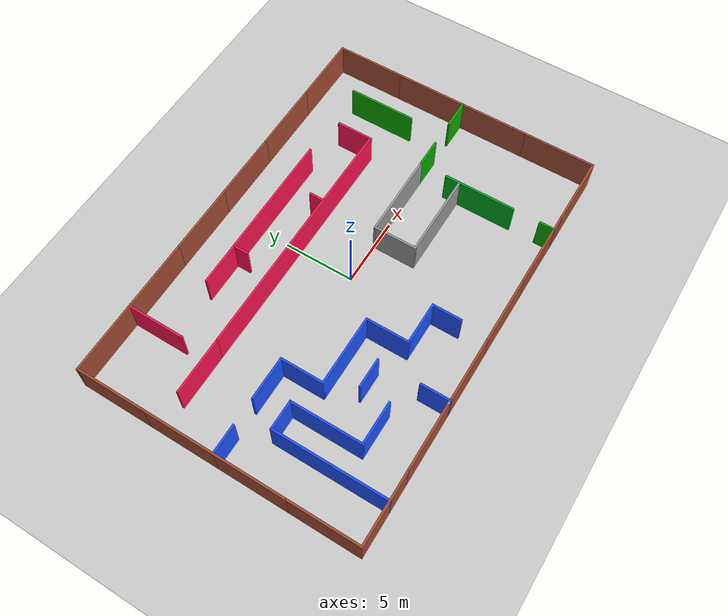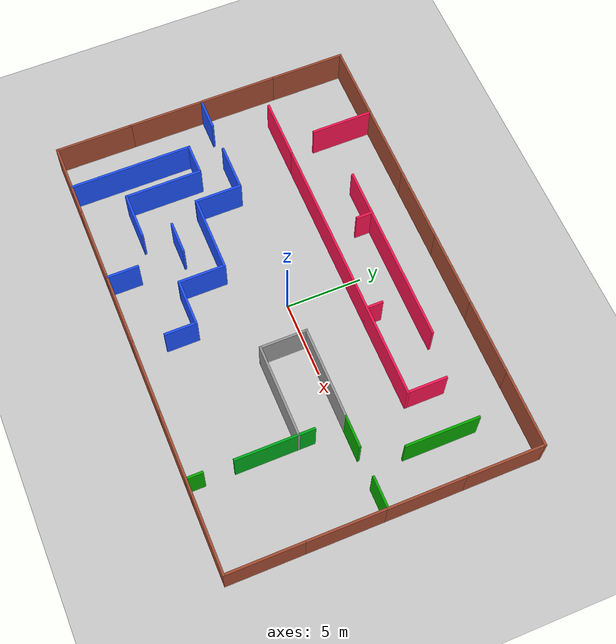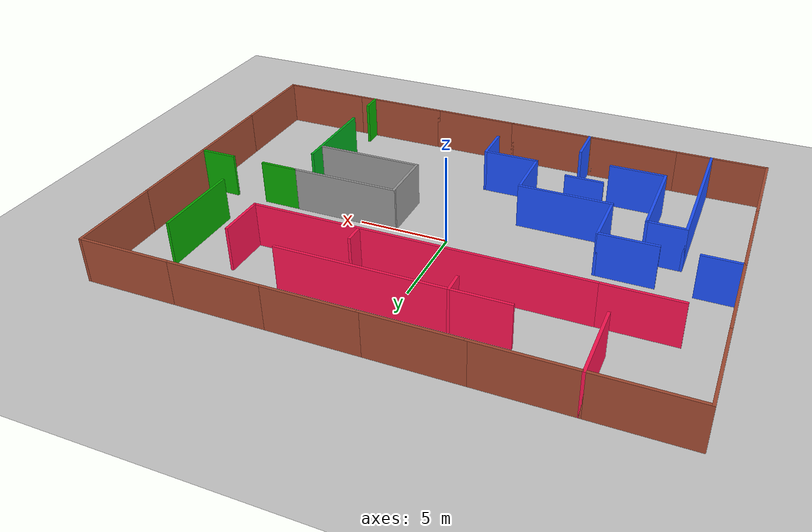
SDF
<sdf version="1.7">
 <world name="default">
  <model name="ground_plane">
   <static>1</static>
   <link name="link">
    <collision name="collision">
     <geometry><plane><normal>0 0 1</normal><size>100 100</size></plane></geometry>
     <surface>
      <contact><collide_bitmask>65535</collide_bitmask></contact>
      <friction><ode><mu>100</mu><mu2>50</mu2></ode></friction>
     </surface>
    </collision>
    <visual name="visual">
     <cast_shadows>0</cast_shadows>
     <geometry><plane><normal>0 0 1</normal><size>100 100</size></plane></geometry>
     <material>
      <script><uri>file://media/materials/scripts/gazebo.material</uri><name>Gazebo/Grey</name></script>
     </material>
    </visual>
   </link>
  </model>
  <model name="Building">
   <link name="Wall_10">
    <collision name="Wall_10_Collision">
     <geometry><box><size>5.15 0.15 2.5</size></box></geometry>
     <pose>0 0 1.25 0 -0 0</pose>
    </collision>
    <visual name="Wall_10_Visual">
     <pose>0 0 1.25 0 -0 0</pose>
     <geometry><box><size>5.15 0.15 2.5</size></box></geometry>
     <material>
      <script><uri>file://media/materials/scripts/gazebo.material</uri><name>Gazebo/Bricks</name></script>
      <ambient>1 1 1 1</ambient>
     </material>
     <meta><layer>0</layer></meta>
    </visual>
    <pose>-12.5 -10 0 0 -0 0</pose>
   </link>
   <link name="Wall_13">
    <collision name="Wall_13_Collision">
     <geometry><box><size>4.97634 0.15 2.5</size></box></geometry>
     <pose>0 0 1.25 0 -0 0</pose>
    </collision>
    <visual name="Wall_13_Visual">
     <pose>0 0 1.25 0 -0 0</pose>
     <geometry><box><size>4.97634 0.15 2.5</size></box></geometry>
     <material>
      <script><uri>file://media/materials/scripts/gazebo.material</uri><name>Gazebo/Bricks</name></script>
      <ambient>1 1 1 1</ambient>
     </material>
     <meta><layer>0</layer></meta>
    </visual>
    <pose>-7.58683 -10 0 0 -0 0</pose>
   </link>
   <link name="Wall_14">
    <collision name="Wall_14_Collision">
     <geometry><box><size>0.207321 0.15 2.5</size></box></geometry>
     <pose>0 0 1.25 0 -0 0</pose>
    </collision>
    <visual name="Wall_14_Visual">
     <pose>0 0 1.25 0 -0 0</pose>
     <geometry><box><size>0.207321 0.15 2.5</size></box></geometry>
     <material>
      <script><uri>file://media/materials/scripts/gazebo.material</uri><name>Gazebo/Grey</name></script>
      <ambient>1 1 1 1</ambient>
     </material>
     <meta><layer>0</layer></meta>
    </visual>
    <pose>-5.16866 -10 0 0 -0 0</pose>
   </link>
   <link name="Wall_15">
    <collision name="Wall_15_Collision">
     <geometry><box><size>5 0.15 2.5</size></box></geometry>
     <pose>0 0 1.25 0 -0 0</pose>
    </collision>
    <visual name="Wall_15_Visual">
     <pose>0 0 1.25 0 -0 0</pose>
     <geometry><box><size>5 0.15 2.5</size></box></geometry>
     <material>
      <script><uri>file://media/materials/scripts/gazebo.material</uri><name>Gazebo/Bricks</name></script>
      <ambient>1 1 1 1</ambient>
     </material>
     <meta><layer>0</layer></meta>
    </visual>
    <pose>-2.715 -10 0 0 -0 0</pose>
   </link>
   <link name="Wall_16">
    <collision name="Wall_16_Collision">
     <geometry><box><size>5 0.15 2.5</size></box></geometry>
     <pose>0 0 1.25 0 -0 0</pose>
    </collision>
    <visual name="Wall_16_Visual">
     <pose>0 0 1.25 0 -0 0</pose>
     <geometry><box><size>5 0.15 2.5</size></box></geometry>
     <material>
      <script><uri>file://media/materials/scripts/gazebo.material</uri><name>Gazebo/Bricks</name></script>
      <ambient>1 1 1 1</ambient>
     </material>
     <meta><layer>0</layer></meta>
    </visual>
    <pose>2.135 -10 0 0 -0 0</pose>
   </link>
   <link name="Wall_17">
    <collision name="Wall_17_Collision">
     <geometry><box><size>5.59 0.15 2.5</size></box></geometry>
     <pose>0 0 1.25 0 -0 0</pose>
    </collision>
    <visual name="Wall_17_Visual">
     <pose>0 0 1.25 0 -0 0</pose>
     <geometry><box><size>5.59 0.15 2.5</size></box></geometry>
     <material>
      <script><uri>file://media/materials/scripts/gazebo.material</uri><name>Gazebo/Bricks</name></script>
      <ambient>1 1 1 1</ambient>
     </material>
     <meta><layer>0</layer></meta>
    </visual>
    <pose>7.28 -10 0 0 -0 0</pose>
   </link>
   <link name="Wall_18">
    <collision name="Wall_18_Collision">
     <geometry><box><size>5.15 0.15 2.5</size></box></geometry>
     <pose>0 0 1.25 0 -0 0</pose>
    </collision>
    <visual name="Wall_18_Visual">
     <pose>0 0 1.25 0 -0 0</pose>
     <geometry><box><size>5.15 0.15 2.5</size></box></geometry>
     <material>
      <script><uri>file://media/materials/scripts/gazebo.material</uri><name>Gazebo/Bricks</name></script>
      <ambient>1 1 1 1</ambient>
     </material>
     <meta><layer>0</layer></meta>
    </visual>
    <pose>12.5 -10 0 0 -0 0</pose>
   </link>
   <link name="Wall_21">
    <collision name="Wall_21_Collision">
     <geometry><box><size>5.15 0.15 2.5</size></box></geometry>
     <pose>0 0 1.25 0 -0 0</pose>
    </collision>
    <visual name="Wall_21_Visual">
     <pose>0 0 1.25 0 -0 0</pose>
     <geometry><box><size>5.15 0.15 2.5</size></box></geometry>
     <material>
      <script><uri>file://media/materials/scripts/gazebo.material</uri><name>Gazebo/Bricks</name></script>
      <ambient>1 1 1 1</ambient>
     </material>
     <meta><layer>0</layer></meta>
    </visual>
    <pose>15 -7.5 0 0 -0 1.5708</pose>
   </link>
   <link name="Wall_22">
    <collision name="Wall_22_Collision">
     <geometry><box><size>5.15 0.15 2.5</size></box></geometry>
     <pose>0 0 1.25 0 -0 0</pose>
    </collision>
    <visual name="Wall_22_Visual">
     <pose>0 0 1.25 0 -0 0</pose>
     <geometry><box><size>5.15 0.15 2.5</size></box></geometry>
     <material>
      <script><uri>file://media/materials/scripts/gazebo.material</uri><name>Gazebo/Bricks</name></script>
      <ambient>1 1 1 1</ambient>
     </material>
     <meta><layer>0</layer></meta>
    </visual>
    <pose>15 -2.5 0 0 -0 1.5708</pose>
   </link>
   <link name="Wall_23">
    <collision name="Wall_23_Collision">
     <geometry><box><size>5.15 0.15 2.5</size></box></geometry>
     <pose>0 0 1.25 0 -0 0</pose>
    </collision>
    <visual name="Wall_23_Visual">
     <pose>0 0 1.25 0 -0 0</pose>
     <geometry><box><size>5.15 0.15 2.5</size></box></geometry>
     <material>
      <script><uri>file://media/materials/scripts/gazebo.material</uri><name>Gazebo/Bricks</name></script>
      <ambient>1 1 1 1</ambient>
     </material>
     <meta><layer>0</layer></meta>
    </visual>
    <pose>15 2.5 0 0 -0 1.5708</pose>
   </link>
   <link name="Wall_24">
    <collision name="Wall_24_Collision">
     <geometry><box><size>5.15 0.15 2.5</size></box></geometry>
     <pose>0 0 1.25 0 -0 0</pose>
    </collision>
    <visual name="Wall_24_Visual">
     <pose>0 0 1.25 0 -0 0</pose>
     <geometry><box><size>5.15 0.15 2.5</size></box></geometry>
     <material>
      <script><uri>file://media/materials/scripts/gazebo.material</uri><name>Gazebo/Bricks</name></script>
      <ambient>1 1 1 1</ambient>
     </material>
     <meta><layer>0</layer></meta>
    </visual>
    <pose>15 7.5 0 0 -0 1.5708</pose>
   </link>
   <link name="Wall_25">
    <collision name="Wall_25_Collision">
     <geometry><box><size>5.15 0.15 2.5</size></box></geometry>
     <pose>0 0 1.25 0 -0 0</pose>
    </collision>
    <visual name="Wall_25_Visual">
     <pose>0 0 1.25 0 -0 0</pose>
     <geometry><box><size>5.15 0.15 2.5</size></box></geometry>
     <material>
      <script><uri>file://media/materials/scripts/gazebo.material</uri><name>Gazebo/Bricks</name></script>
      <ambient>1 1 1 1</ambient>
     </material>
     <meta><layer>0</layer></meta>
    </visual>
    <pose>12.5 10 0 0 -0 3.14159</pose>
   </link>
   <link name="Wall_26">
    <collision name="Wall_26_Collision">
     <geometry><box><size>5.15 0.15 2.5</size></box></geometry>
     <pose>0 0 1.25 0 -0 0</pose>
    </collision>
    <visual name="Wall_26_Visual">
     <pose>0 0 1.25 0 -0 0</pose>
     <geometry><box><size>5.15 0.15 2.5</size></box></geometry>
     <material>
      <script><uri>file://media/materials/scripts/gazebo.material</uri><name>Gazebo/Bricks</name></script>
      <ambient>1 1 1 1</ambient>
     </material>
     <meta><layer>0</layer></meta>
    </visual>
    <pose>7.5 10 0 0 -0 3.14159</pose>
   </link>
   <link name="Wall_28">
    <collision name="Wall_28_Collision">
     <geometry><box><size>5.15 0.15 2.5</size></box></geometry>
     <pose>0 0 1.25 0 -0 0</pose>
    </collision>
    <visual name="Wall_28_Visual">
     <pose>0 0 1.25 0 -0 0</pose>
     <geometry><box><size>5.15 0.15 2.5</size></box></geometry>
     <material>
      <script><uri>file://media/materials/scripts/gazebo.material</uri><name>Gazebo/Bricks</name></script>
      <ambient>1 1 1 1</ambient>
     </material>
     <meta><layer>0</layer></meta>
    </visual>
    <pose>2.5 10 0 0 -0 3.14159</pose>
   </link>
   <link name="Wall_29">
    <collision name="Wall_29_Collision">
     <geometry><box><size>5.15 0.15 2.5</size></box></geometry>
     <pose>0 0 1.25 0 -0 0</pose>
    </collision>
    <visual name="Wall_29_Visual">
     <pose>0 0 1.25 0 -0 0</pose>
     <geometry><box><size>5.15 0.15 2.5</size></box></geometry>
     <material>
      <script><uri>file://media/materials/scripts/gazebo.material</uri><name>Gazebo/Bricks</name></script>
      <ambient>1 1 1 1</ambient>
     </material>
     <meta><layer>0</layer></meta>
    </visual>
    <pose>-2.5 10 0 0 -0 3.14159</pose>
   </link>
   <link name="Wall_31">
    <collision name="Wall_31_Collision">
     <geometry><box><size>5.15 0.15 2.5</size></box></geometry>
     <pose>0 0 1.25 0 -0 0</pose>
    </collision>
    <visual name="Wall_31_Visual">
     <pose>0 0 1.25 0 -0 0</pose>
     <geometry><box><size>5.15 0.15 2.5</size></box></geometry>
     <material>
      <script><uri>file://media/materials/scripts/gazebo.material</uri><name>Gazebo/Bricks</name></script>
      <ambient>1 1 1 1</ambient>
     </material>
     <meta><layer>0</layer></meta>
    </visual>
    <pose>-12.5 10 0 0 -0 3.14159</pose>
   </link>
   <link name="Wall_32">
    <collision name="Wall_32_Collision">
     <geometry><box><size>5.15 0.15 2.5</size></box></geometry>
     <pose>0 0 1.25 0 -0 0</pose>
    </collision>
    <visual name="Wall_32_Visual">
     <pose>0 0 1.25 0 -0 0</pose>
     <geometry><box><size>5.15 0.15 2.5</size></box></geometry>
     <material>
      <script><uri>file://media/materials/scripts/gazebo.material</uri><name>Gazebo/Bricks</name></script>
      <ambient>1 1 1 1</ambient>
     </material>
     <meta><layer>0</layer></meta>
    </visual>
    <pose>-15 7.5 0 0 -0 -1.5708</pose>
   </link>
   <link name="Wall_33">
    <collision name="Wall_33_Collision">
     <geometry><box><size>5.15 0.15 2.5</size></box></geometry>
     <pose>0 0 1.25 0 -0 0</pose>
    </collision>
    <visual name="Wall_33_Visual">
     <pose>0 0 1.25 0 -0 0</pose>
     <geometry><box><size>5.15 0.15 2.5</size></box></geometry>
     <material>
      <script><uri>file://media/materials/scripts/gazebo.material</uri><name>Gazebo/Bricks</name></script>
      <ambient>1 1 1 1</ambient>
     </material>
     <meta><layer>0</layer></meta>
    </visual>
    <pose>-15 2.5 0 0 -0 -1.5708</pose>
   </link>
   <link name="Wall_34">
    <collision name="Wall_34_Collision">
     <geometry><box><size>5.15 0.15 2.5</size></box></geometry>
     <pose>0 0 1.25 0 -0 0</pose>
    </collision>
    <visual name="Wall_34_Visual">
     <pose>0 0 1.25 0 -0 0</pose>
     <geometry><box><size>5.15 0.15 2.5</size></box></geometry>
     <material>
      <script><uri>file://media/materials/scripts/gazebo.material</uri><name>Gazebo/Bricks</name></script>
      <ambient>1 1 1 1</ambient>
     </material>
     <meta><layer>0</layer></meta>
    </visual>
    <pose>-15 -2.5 0 0 -0 -1.5708</pose>
   </link>
   <link name="Wall_35">
    <collision name="Wall_35_Collision">
     <geometry><box><size>5.15 0.15 2.5</size></box></geometry>
     <pose>0 0 1.25 0 -0 0</pose>
    </collision>
    <visual name="Wall_35_Visual">
     <pose>0 0 1.25 0 -0 0</pose>
     <geometry><box><size>5.15 0.15 2.5</size></box></geometry>
     <material>
      <script><uri>file://media/materials/scripts/gazebo.material</uri><name>Gazebo/Bricks</name></script>
      <ambient>1 1 1 1</ambient>
     </material>
     <meta><layer>0</layer></meta>
    </visual>
    <pose>-15 -7.5 0 0 -0 -1.5708</pose>
   </link>
   <link name="Wall_37">
    <collision name="Wall_37_Collision">
     <geometry><box><size>5.15 0.15 2.5</size></box></geometry>
     <pose>0 0 1.25 0 -0 0</pose>
    </collision>
    <visual name="Wall_37_Visual">
     <pose>0 0 1.25 0 -0 0</pose>
     <geometry><box><size>5.15 0.15 2.5</size></box></geometry>
     <material>
      <script><uri>file://media/materials/scripts/gazebo.material</uri><name>Gazebo/Bricks</name></script>
      <ambient>1 1 1 1</ambient>
     </material>
     <meta><layer>0</layer></meta>
    </visual>
    <pose>-7.5 10 0 0 -0 0</pose>
   </link>
   <link name="Wall_39">
    <collision name="Wall_39_Collision">
     <geometry><box><size>8.15 0.15 2.5</size></box></geometry>
     <pose>0 0 1.25 0 -0 0</pose>
    </collision>
    <visual name="Wall_39_Visual">
     <pose>0 0 1.25 0 -0 0</pose>
     <geometry><box><size>8.15 0.15 2.5</size></box></geometry>
     <material>
      <script><uri>file://media/materials/scripts/gazebo.material</uri><name>Gazebo/Grey</name></script>
      <ambient>0.113725 0.321569 1 1</ambient>
     </material>
     <meta><layer>0</layer></meta>
    </visual>
    <pose>-12 -6 0 0 -0 1.5708</pose>
   </link>
   <link name="Wall_41">
    <collision name="Wall_41_Collision">
     <geometry><box><size>2.15 0.15 2.5</size></box></geometry>
     <pose>0 0 1.25 0 -0 0</pose>
    </collision>
    <visual name="Wall_41_Visual">
     <pose>0 0 1.25 0 -0 0</pose>
     <geometry><box><size>2.15 0.15 2.5</size></box></geometry>
     <material>
      <script><uri>file://media/materials/scripts/gazebo.material</uri><name>Gazebo/Grey</name></script>
      <ambient>0.113725 0.321569 1 1</ambient>
     </material>
     <meta><layer>0</layer></meta>
    </visual>
    <pose>-14 0 0 0 -0 0</pose>
   </link>
   <link name="Wall_43">
    <collision name="Wall_43_Collision">
     <geometry><box><size>5.15 0.15 2.5</size></box></geometry>
     <pose>0 0 1.25 0 -0 0</pose>
    </collision>
    <visual name="Wall_43_Visual">
     <pose>0 0 1.25 0 -0 0</pose>
     <geometry><box><size>5.15 0.15 2.5</size></box></geometry>
     <material>
      <script><uri>file://media/materials/scripts/gazebo.material</uri><name>Gazebo/Grey</name></script>
      <ambient>0.113725 0.321569 1 1</ambient>
     </material>
     <meta><layer>0</layer></meta>
    </visual>
    <pose>-5.5 -3 0 0 -0 0</pose>
   </link>
   <link name="Wall_44">
    <collision name="Wall_44_Collision">
     <geometry><box><size>3.15 0.15 2.5</size></box></geometry>
     <pose>0 0 1.25 0 -0 0</pose>
    </collision>
    <visual name="Wall_44_Visual">
     <pose>0 0 1.25 0 -0 0</pose>
     <geometry><box><size>3.15 0.15 2.5</size></box></geometry>
     <material>
      <script><uri>file://media/materials/scripts/gazebo.material</uri><name>Gazebo/Grey</name></script>
      <ambient>0.113725 0.321569 1 1</ambient>
     </material>
     <meta><layer>0</layer></meta>
    </visual>
    <pose>-3 -4.5 0 0 -0 -1.5708</pose>
   </link>
   <link name="Wall_45">
    <collision name="Wall_45_Collision">
     <geometry><box><size>3.15 0.15 2.5</size></box></geometry>
     <pose>0 0 1.25 0 -0 0</pose>
    </collision>
    <visual name="Wall_45_Visual">
     <pose>0 0 1.25 0 -0 0</pose>
     <geometry><box><size>3.15 0.15 2.5</size></box></geometry>
     <material>
      <script><uri>file://media/materials/scripts/gazebo.material</uri><name>Gazebo/Grey</name></script>
      <ambient>0.113725 0.321569 1 1</ambient>
     </material>
     <meta><layer>0</layer></meta>
    </visual>
    <pose>-1.5 -6 0 0 -0 0</pose>
   </link>
   <link name="Wall_46">
    <collision name="Wall_46_Collision">
     <geometry><box><size>2.15 0.15 2.5</size></box></geometry>
     <pose>0 0 1.25 0 -0 0</pose>
    </collision>
    <visual name="Wall_46_Visual">
     <pose>0 0 1.25 0 -0 0</pose>
     <geometry><box><size>2.15 0.15 2.5</size></box></geometry>
     <material>
      <script><uri>file://media/materials/scripts/gazebo.material</uri><name>Gazebo/Grey</name></script>
      <ambient>0.113725 0.321569 1 1</ambient>
     </material>
     <meta><layer>0</layer></meta>
    </visual>
    <pose>0 -7 0 0 -0 -1.5708</pose>
   </link>
   <link name="Wall_48">
    <collision name="Wall_48_Collision">
     <geometry><box><size>2.15 0.15 2.5</size></box></geometry>
     <pose>0 0 1.25 0 -0 0</pose>
    </collision>
    <visual name="Wall_48_Visual">
     <pose>0 0 1.25 0 -0 0</pose>
     <geometry><box><size>2.15 0.15 2.5</size></box></geometry>
     <material>
      <script><uri>file://media/materials/scripts/gazebo.material</uri><name>Gazebo/Grey</name></script>
      <ambient>0.113725 0.321569 1 1</ambient>
     </material>
     <meta><layer>0</layer></meta>
    </visual>
    <pose>-11 -2 0 0 -0 0</pose>
   </link>
   <link name="Wall_49">
    <collision name="Wall_49_Collision">
     <geometry><box><size>5.15 0.15 2.5</size></box></geometry>
     <pose>0 0 1.25 0 -0 0</pose>
    </collision>
    <visual name="Wall_49_Visual">
     <pose>0 0 1.25 0 -0 0</pose>
     <geometry><box><size>5.15 0.15 2.5</size></box></geometry>
     <material>
      <script><uri>file://media/materials/scripts/gazebo.material</uri><name>Gazebo/Grey</name></script>
      <ambient>0.113725 0.321569 1 1</ambient>
     </material>
     <meta><layer>0</layer></meta>
    </visual>
    <pose>-10 -4.5 0 0 -0 -1.5708</pose>
   </link>
   <link name="Wall_50">
    <collision name="Wall_50_Collision">
     <geometry><box><size>3.15 0.15 2.5</size></box></geometry>
     <pose>0 0 1.25 0 -0 0</pose>
    </collision>
    <visual name="Wall_50_Visual">
     <pose>0 0 1.25 0 -0 0</pose>
     <geometry><box><size>3.15 0.15 2.5</size></box></geometry>
     <material>
      <script><uri>file://media/materials/scripts/gazebo.material</uri><name>Gazebo/Grey</name></script>
      <ambient>0.113725 0.321569 1 1</ambient>
     </material>
     <meta><layer>0</layer></meta>
    </visual>
    <pose>-8.5 -7 0 0 -0 0</pose>
   </link>
   <link name="Wall_52">
    <collision name="Wall_52_Collision">
     <geometry><box><size>2.15 0.15 2.5</size></box></geometry>
     <pose>0 0 1.25 0 -0 0</pose>
    </collision>
    <visual name="Wall_52_Visual">
     <pose>0 0 1.25 0 -0 0</pose>
     <geometry><box><size>2.15 0.15 2.5</size></box></geometry>
     <material>
      <script><uri>file://media/materials/scripts/gazebo.material</uri><name>Gazebo/Grey</name></script>
      <ambient>0.113725 0.321569 1 1</ambient>
     </material>
     <meta><layer>0</layer></meta>
    </visual>
    <pose>-6 -5 0 0 -0 0</pose>
   </link>
   <link name="Wall_54">
    <collision name="Wall_54_Collision">
     <geometry><box><size>2.15 0.15 2.5</size></box></geometry>
     <pose>0 0 1.25 0 -0 0</pose>
    </collision>
    <visual name="Wall_54_Visual">
     <pose>0 0 1.25 0 -0 0</pose>
     <geometry><box><size>2.15 0.15 2.5</size></box></geometry>
     <material>
      <script><uri>file://media/materials/scripts/gazebo.material</uri><name>Gazebo/Grey</name></script>
      <ambient>0.113725 0.321569 1 1</ambient>
     </material>
     <meta><layer>0</layer></meta>
    </visual>
    <pose>-5 -9 0 0 -0 -1.5708</pose>
   </link>
   <link name="Wall_56">
    <collision name="Wall_56_Collision">
     <geometry><box><size>3.15 0.15 2.5</size></box></geometry>
     <pose>0 0 1.25 0 -0 0</pose>
    </collision>
    <visual name="Wall_56_Visual">
     <pose>0 0 1.25 0 -0 0</pose>
     <geometry><box><size>3.15 0.15 2.5</size></box></geometry>
     <material>
      <script><uri>file://media/materials/scripts/gazebo.material</uri><name>Gazebo/Grey</name></script>
      <ambient>0.113725 0.321569 1 1</ambient>
     </material>
     <meta><layer>0</layer></meta>
    </visual>
    <pose>-9.5 0 0 0 -0 0</pose>
   </link>
   <link name="Wall_57">
    <collision name="Wall_57_Collision">
     <geometry><box><size>3.15 0.15 2.5</size></box></geometry>
     <pose>0 0 1.25 0 -0 0</pose>
    </collision>
    <visual name="Wall_57_Visual">
     <pose>0 0 1.25 0 -0 0</pose>
     <geometry><box><size>3.15 0.15 2.5</size></box></geometry>
     <material>
      <script><uri>file://media/materials/scripts/gazebo.material</uri><name>Gazebo/Grey</name></script>
      <ambient>0.113725 0.321569 1 1</ambient>
     </material>
     <meta><layer>0</layer></meta>
    </visual>
    <pose>-8 -1.5 0 0 -0 -1.5708</pose>
   </link>
   <link name="Wall_59">
    <collision name="Wall_59_Collision">
     <geometry><box><size>1.15 0.15 2.5</size></box></geometry>
     <pose>0 0 1.25 0 -0 0</pose>
    </collision>
    <visual name="Wall_59_Visual">
     <pose>0 0 1.25 0 -0 0</pose>
     <geometry><box><size>1.15 0.15 2.5</size></box></geometry>
     <material>
      <script><uri>file://media/materials/scripts/gazebo.material</uri><name>Gazebo/Grey</name></script>
      <ambient>0.0313726 0.666667 0 1</ambient>
     </material>
     <meta><layer>0</layer></meta>
    </visual>
    <pose>9 -9.5 0 0 -0 1.5708</pose>
   </link>
   <link name="Wall_62">
    <collision name="Wall_62_Collision">
     <geometry><box><size>5.15 0.15 2.5</size></box></geometry>
     <pose>0 0 1.25 0 -0 0</pose>
    </collision>
    <visual name="Wall_62_Visual">
     <pose>0 0 1.25 0 -0 0</pose>
     <geometry><box><size>5.15 0.15 2.5</size></box></geometry>
     <material>
      <script><uri>file://media/materials/scripts/gazebo.material</uri><name>Gazebo/Grey</name></script>
      <ambient>0 0.666667 0.109804 1</ambient>
     </material>
     <meta><layer>0</layer></meta>
    </visual>
    <pose>9 -4.5 0 0 -0 1.5708</pose>
   </link>
   <link name="Wall_63">
    <collision name="Wall_63_Collision">
     <geometry><box><size>2.15 0.15 2.5</size></box></geometry>
     <pose>0 0 1.25 0 -0 0</pose>
    </collision>
    <visual name="Wall_63_Visual">
     <pose>0 0 1.25 0 -0 0</pose>
     <geometry><box><size>2.15 0.15 2.5</size></box></geometry>
     <material>
      <script><uri>file://media/materials/scripts/gazebo.material</uri><name>Gazebo/Grey</name></script>
      <ambient>0.0313726 0.666667 0 1</ambient>
     </material>
     <meta><layer>0</layer></meta>
    </visual>
    <pose>10 0 0 0 -0 0</pose>
   </link>
   <link name="Wall_65">
    <collision name="Wall_65_Collision">
     <geometry><box><size>2.15 0.15 2.5</size></box></geometry>
     <pose>0 0 1.25 0 -0 0</pose>
    </collision>
    <visual name="Wall_65_Visual">
     <pose>0 0 1.25 0 -0 0</pose>
     <geometry><box><size>2.15 0.15 2.5</size></box></geometry>
     <material>
      <script><uri>file://media/materials/scripts/gazebo.material</uri><name>Gazebo/Grey</name></script>
      <ambient>0.0313726 0.666667 0 1</ambient>
     </material>
     <meta><layer>0</layer></meta>
    </visual>
    <pose>14 0 0 0 -0 0</pose>
   </link>
   <link name="Wall_68">
    <collision name="Wall_68_Collision">
     <geometry><box><size>4.15 0.15 2.5</size></box></geometry>
     <pose>0 0 1.25 0 -0 0</pose>
    </collision>
    <visual name="Wall_68_Visual">
     <pose>0 0 1.25 0 -0 0</pose>
     <geometry><box><size>4.15 0.15 2.5</size></box></geometry>
     <material>
      <script><uri>file://media/materials/scripts/gazebo.material</uri><name>Gazebo/Grey</name></script>
      <ambient>1 0.0745098 0.321569 1</ambient>
     </material>
     <meta><layer>0</layer></meta>
    </visual>
    <pose>-10 8 0 0 -0 1.5708</pose>
   </link>
   <link name="Wall_70">
    <collision name="Wall_70_Collision">
     <geometry><box><size>4.15 0.15 2.5</size></box></geometry>
     <pose>0 0 1.25 0 -0 0</pose>
    </collision>
    <visual name="Wall_70_Visual">
     <pose>0 0 1.25 0 -0 0</pose>
     <geometry><box><size>4.15 0.15 2.5</size></box></geometry>
     <material>
      <script><uri>file://media/materials/scripts/gazebo.material</uri><name>Gazebo/Grey</name></script>
      <ambient>1 0.0745098 0.321569 1</ambient>
     </material>
     <meta><layer>0</layer></meta>
    </visual>
    <pose>-11 4 0 0 -0 0</pose>
   </link>
   <link name="Wall_72">
    <collision name="Wall_72_Collision">
     <geometry><box><size>12.15 0.15 2.5</size></box></geometry>
     <pose>0 0 1.25 0 -0 0</pose>
    </collision>
    <visual name="Wall_72_Visual">
     <pose>0 0 1.25 0 -0 0</pose>
     <geometry><box><size>12.15 0.15 2.5</size></box></geometry>
     <material>
      <script><uri>file://media/materials/scripts/gazebo.material</uri><name>Gazebo/Grey</name></script>
      <ambient>1 0.0745098 0.321569 1</ambient>
     </material>
     <meta><layer>0</layer></meta>
    </visual>
    <pose>0 7 0 0 -0 0</pose>
   </link>
   <link name="Wall_75">
    <collision name="Wall_75_Collision">
     <geometry><box><size>18.15 0.15 2.5</size></box></geometry>
     <pose>0 0 1.25 0 -0 0</pose>
    </collision>
    <visual name="Wall_75_Visual">
     <pose>0 0 1.25 0 -0 0</pose>
     <geometry><box><size>18.15 0.15 2.5</size></box></geometry>
     <material>
      <script><uri>file://media/materials/scripts/gazebo.material</uri><name>Gazebo/Grey</name></script>
      <ambient>1 0.0745098 0.321569 1</ambient>
     </material>
     <meta><layer>0</layer></meta>
    </visual>
    <pose>0 4 0 0 -0 0</pose>
   </link>
   <link name="Wall_77">
    <collision name="Wall_77_Collision">
     <geometry><box><size>1.15 0.15 2.5</size></box></geometry>
     <pose>0 0 1.25 0 -0 0</pose>
    </collision>
    <visual name="Wall_77_Visual">
     <pose>0 0 1.25 0 -0 0</pose>
     <geometry><box><size>1.15 0.15 2.5</size></box></geometry>
     <material>
      <script><uri>file://media/materials/scripts/gazebo.material</uri><name>Gazebo/Grey</name></script>
      <ambient>1 0.0745098 0.321569 1</ambient>
     </material>
     <meta><layer>0</layer></meta>
    </visual>
    <pose>-3 6.5 0 0 -0 -1.5708</pose>
   </link>
   <link name="Wall_79">
    <collision name="Wall_79_Collision">
     <geometry><box><size>1.15 0.15 2.5</size></box></geometry>
     <pose>0 0 1.25 0 -0 0</pose>
    </collision>
    <visual name="Wall_79_Visual">
     <pose>0 0 1.25 0 -0 0</pose>
     <geometry><box><size>1.15 0.15 2.5</size></box></geometry>
     <material>
      <script><uri>file://media/materials/scripts/gazebo.material</uri><name>Gazebo/Grey</name></script>
      <ambient>1 0.0745098 0.321569 1</ambient>
     </material>
     <meta><layer>0</layer></meta>
    </visual>
    <pose>3 4.5 0 0 -0 1.5708</pose>
   </link>
   <link name="Wall_81">
    <collision name="Wall_81_Collision">
     <geometry><box><size>2.65 0.15 2.5</size></box></geometry>
     <pose>0 0 1.25 0 -0 0</pose>
    </collision>
    <visual name="Wall_81_Visual">
     <pose>0 0 1.25 0 -0 0</pose>
     <geometry><box><size>2.65 0.15 2.5</size></box></geometry>
     <material>
      <script><uri>file://media/materials/scripts/gazebo.material</uri><name>Gazebo/Grey</name></script>
      <ambient>1 0.0745098 0.321569 1</ambient>
     </material>
     <meta><layer>0</layer></meta>
    </visual>
    <pose>9 5.25 0 0 -0 -1.5708</pose>
   </link>
   <link name="Wall_83">
    <collision name="Wall_83_Collision">
     <geometry><box><size>4.85 0.15 2.5</size></box></geometry>
     <pose>0 0 1.25 0 -0 0</pose>
    </collision>
    <visual name="Wall_83_Visual">
     <pose>0 0 1.25 0 -0 0</pose>
     <geometry><box><size>4.85 0.15 2.5</size></box></geometry>
     <material>
      <script><uri>file://media/materials/scripts/gazebo.material</uri><name>Gazebo/Grey</name></script>
      <ambient>0.0313726 0.666667 0 1</ambient>
     </material>
     <meta><layer>0</layer></meta>
    </visual>
    <pose>12 4.85 0 0 -0 -1.5708</pose>
   </link>
   <link name="Wall_85">
    <collision name="Wall_85_Collision">
     <geometry><box><size>6.15 0.15 2.5</size></box></geometry>
     <pose>0 0 1.25 0 -0 0</pose>
    </collision>
    <visual name="Wall_85_Visual">
     <pose>0 0 1.25 0 -0 0</pose>
     <geometry><box><size>6.15 0.15 2.5</size></box></geometry>
     <material>
      <script><uri>file://media/materials/scripts/gazebo.material</uri><name>Gazebo/Grey</name></script>
      <ambient>1 1 1 1</ambient>
     </material>
     <meta><layer>0</layer></meta>
    </visual>
    <pose>6 0 0 0 -0 3.14159</pose>
   </link>
   <link name="Wall_86">
    <collision name="Wall_86_Collision">
     <geometry><box><size>3.15 0.15 2.5</size></box></geometry>
     <pose>0 0 1.25 0 -0 0</pose>
    </collision>
    <visual name="Wall_86_Visual">
     <pose>0 0 1.25 0 -0 0</pose>
     <geometry><box><size>3.15 0.15 2.5</size></box></geometry>
     <material>
      <script><uri>file://media/materials/scripts/gazebo.material</uri><name>Gazebo/Grey</name></script>
      <ambient>1 1 1 1</ambient>
     </material>
     <meta><layer>0</layer></meta>
    </visual>
    <pose>3 -1.5 0 0 -0 -1.5708</pose>
   </link>
   <link name="Wall_87">
    <collision name="Wall_87_Collision">
     <geometry><box><size>6.15 0.15 2.5</size></box></geometry>
     <pose>0 0 1.25 0 -0 0</pose>
    </collision>
    <visual name="Wall_87_Visual">
     <pose>0 0 1.25 0 -0 0</pose>
     <geometry><box><size>6.15 0.15 2.5</size></box></geometry>
     <material>
      <script><uri>file://media/materials/scripts/gazebo.material</uri><name>Gazebo/Grey</name></script>
      <ambient>1 1 1 1</ambient>
     </material>
     <meta><layer>0</layer></meta>
    </visual>
    <pose>6 -3 0 0 -0 0</pose>
   </link>
   <static>1</static>
  </model>
 </world>
</sdf>
